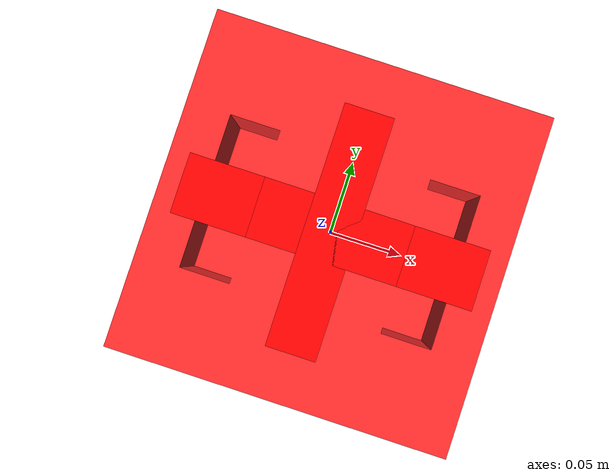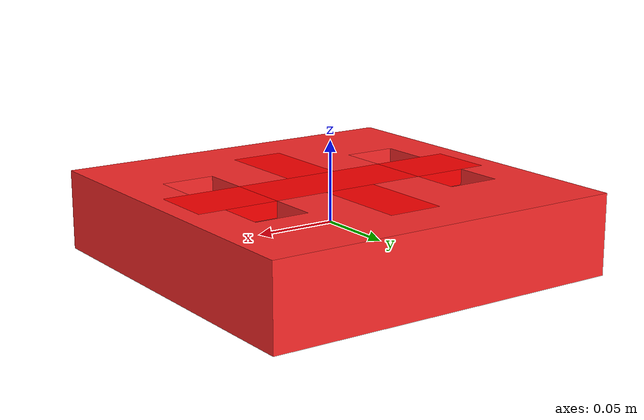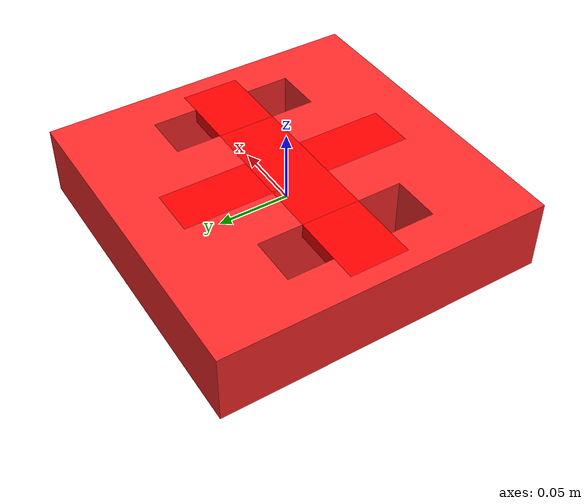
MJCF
<?xml version='1.0' encoding='utf-8'?>
<mujoco model="obj1">
  <asset>
    <mesh name="obj1" file="obj1.obj" scale="0.001 0.001 0.001" />
    <material name="mat1" rgba="1 0.16471 0.16471 1" />
  </asset>
  <worldbody>
    <body>
      <body name="object">
        <geom name="visual" mesh="obj1" type="mesh" group="1" contype="0" conaffinity="0" material="mat1" />
        <geom name="collision" mesh="obj1" type="mesh" group="0" density="50" friction="0.95 0.3 0.1" solimp="0.998 0.998 0.001" solref="0.001 1" condim="4" />

        <site name="bottom_site" pos="0 0 -0.025" size="0.005" rgba="0 0 0 0" />
        <site name="top_site" pos="0 0 0.025" size="0.005" rgba="0 0 0 0" />
        <site name="horizontal_radius_site" pos="0.03 0.03 0" size="0.005" rgba="0 0 0 0" />

        <!-- ================= Board 1 Frame Holes ================= -->
        <site name="hole_slot_center_vertical_site" pos="0 0 0.0025" size="0.017 0.0825 0.0225" rgba="1 0 0 1" type="box" />
        <site name="hole_slot_center_horizontal_site" pos="0 0 0.020" size="0.051 0.0205 0.005" rgba="1 0 0 1" type="box" />
        <site name="hole_slot_left_horizontal_site" pos="-0.0765 0 0.020" size="0.0255 0.0205 0.005" rgba="1 0 0 1" type="box" />
        <site name="hole_slot_right_horizontal_site" pos="0.0765 0 0.020" size="0.0255 0.0205 0.005" rgba="1 0 0 1" type="box" />
      </body>
    </body>
  </worldbody>
</mujoco>
